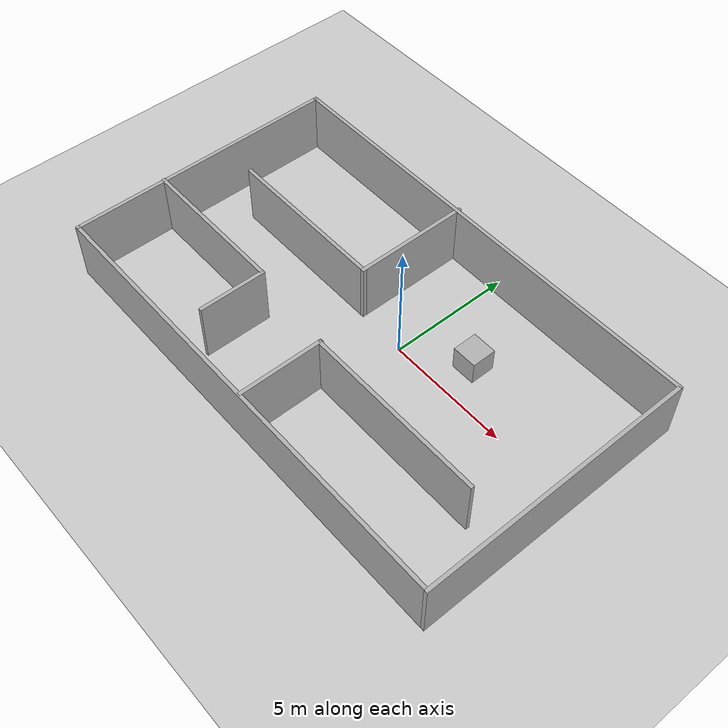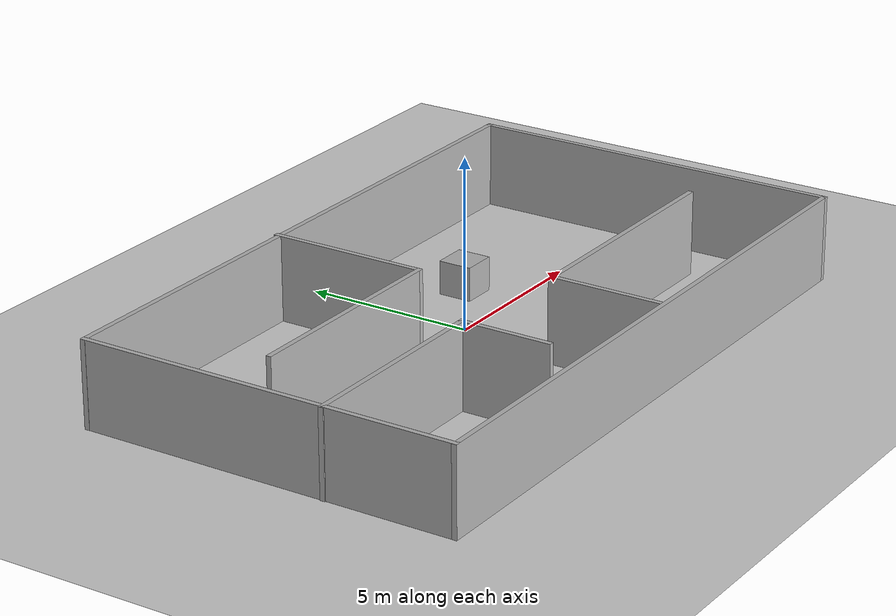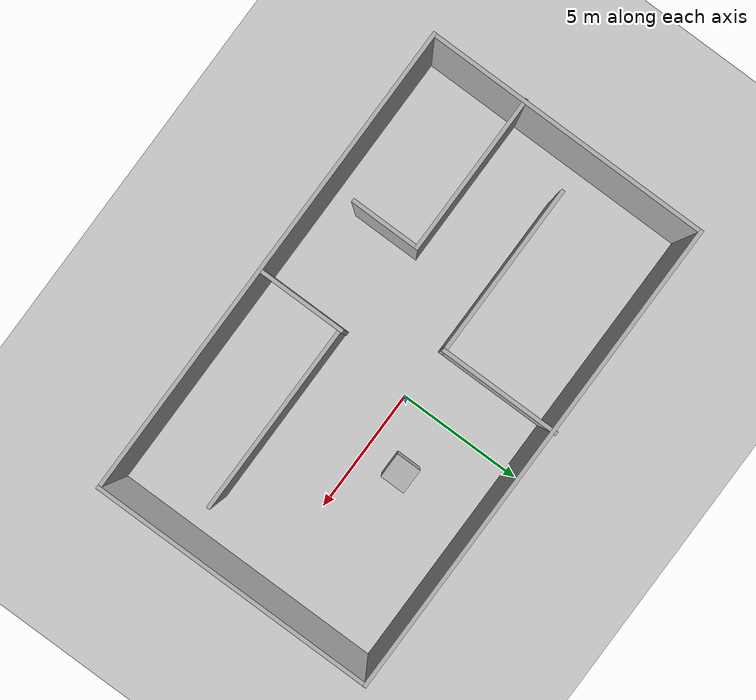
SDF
<?xml version="1.0" ?>
<sdf version='1.10'>
  <world name='default'>

    <plugin filename="gz-sim-physics-system" name="gz::sim::systems::Physics"/>
    <plugin filename="gz-sim-scene-broadcaster-system" name="gz::sim::systems::SceneBroadcaster"/>
    <plugin filename="gz-sim-user-commands-system" name="gz::sim::systems::UserCommands"/>
    <plugin filename="gz-sim-imu-system" name="gz::sim::systems::Imu"/>

    <plugin filename="gz-sim-sensors-system" name="gz::sim::systems::Sensors">
      <render_engine>ogre2</render_engine>
    </plugin>

    <gravity>0 0 -9.8</gravity>
    <physics type='ode'>
      <max_step_size>0.001</max_step_size>
      <real_time_factor>1</real_time_factor>
      <real_time_update_rate>1000</real_time_update_rate>
    </physics>
    <scene>
      <ambient>0.4 0.4 0.4 1</ambient>
      <background>0.7 0.7 0.7 1</background>
      <shadows>true</shadows>
    </scene>

    <light name='maze_sun' type='directional'>
      <pose>0 0 10 0 0 0</pose>
      <cast_shadows>true</cast_shadows>
      <intensity>1</intensity>
      <direction>0 0 -1</direction>
      <diffuse>0.8 0.8 0.8 1</diffuse>
      <specular>0.2 0.2 0.2 1</specular>
    </light>

    <model name='ground_plane'>
      <static>true</static>
      <link name='link'>
        <collision name='collision'>
          <geometry><plane><normal>0 0 1</normal><size>100 100</size></plane></geometry>
        </collision>
        <visual name='visual'>
          <cast_shadows>false</cast_shadows>
          <geometry><plane><normal>0 0 1</normal><size>100 100</size></plane></geometry>
          <material>
            <ambient>0.8 0.8 0.8 1</ambient>
            <diffuse>0.8 0.8 0.8 1</diffuse>
            <specular>0.8 0.8 0.8 1</specular>
          </material>
        </visual>
      </link>
    </model>

    <model name='room'>
      <pose>-0.97 -0.90 0 0 0 0</pose>
      <static>true</static>

      <link name='Wall_66'>
        <pose>0.01 5.51 0 0 0 0</pose>
        <collision name='Wall_66_Collision'><pose>0 0 1.25 0 0 0</pose><geometry><box><size>19 0.15 2.5</size></box></geometry></collision>
        <visual name='Wall_66_Visual'><pose>0 0 1.25 0 0 0</pose><geometry><box><size>19 0.15 2.5</size></box></geometry>
          <material><ambient>0.7 0.7 0.7 1</ambient><diffuse>0.7 0.7 0.7 1</diffuse></material>
        </visual>
      </link>

      <link name='Wall_67'>
        <pose>9.44 -0.04 0 0 0 -1.5708</pose>
        <collision name='Wall_67_Collision'><pose>0 0 1.25 0 0 0</pose><geometry><box><size>11.25 0.15 2.5</size></box></geometry></collision>
        <visual name='Wall_67_Visual'><pose>0 0 1.25 0 0 0</pose><geometry><box><size>11.25 0.15 2.5</size></box></geometry>
          <material><ambient>0.7 0.7 0.7 1</ambient><diffuse>0.7 0.7 0.7 1</diffuse></material>
        </visual>
      </link>

      <link name='Wall_68'>
        <pose>0.01 -5.59 0 0 0 3.1416</pose>
        <collision name='Wall_68_Collision'><pose>0 0 1.25 0 0 0</pose><geometry><box><size>19 0.15 2.5</size></box></geometry></collision>
        <visual name='Wall_68_Visual'><pose>0 0 1.25 0 0 0</pose><geometry><box><size>19 0.15 2.5</size></box></geometry>
          <material><ambient>0.7 0.7 0.7 1</ambient><diffuse>0.7 0.7 0.7 1</diffuse></material>
        </visual>
      </link>

      <link name='Wall_69'>
        <pose>-9.41 -0.04 0 0 0 1.5708</pose>
        <collision name='Wall_69_Collision'><pose>0 0 1.25 0 0 0</pose><geometry><box><size>11.25 0.15 2.5</size></box></geometry></collision>
        <visual name='Wall_69_Visual'><pose>0 0 1.25 0 0 0</pose><geometry><box><size>11.25 0.15 2.5</size></box></geometry>
          <material><ambient>0.7 0.7 0.7 1</ambient><diffuse>0.7 0.7 0.7 1</diffuse></material>
        </visual>
      </link>

      <link name='Wall_71'>
        <pose>-1.12 3.29 0 0 0 -1.5708</pose>
        <collision name='Wall_71_Collision'><pose>0 0 1.25 0 0 0</pose><geometry><box><size>4.75 0.15 2.5</size></box></geometry></collision>
        <visual name='Wall_71_Visual'><pose>0 0 1.25 0 0 0</pose><geometry><box><size>4.75 0.15 2.5</size></box></geometry>
          <material><ambient>0.7 0.7 0.7 1</ambient><diffuse>0.7 0.7 0.7 1</diffuse></material>
        </visual>
      </link>

      <link name='Wall_72'>
        <pose>-4.42 0.99 0 0 0 3.1416</pose>
        <collision name='Wall_72_Collision'><pose>0 0 1.25 0 0 0</pose><geometry><box><size>6.75 0.15 2.5</size></box></geometry></collision>
        <visual name='Wall_72_Visual'><pose>0 0 1.25 0 0 0</pose><geometry><box><size>6.75 0.15 2.5</size></box></geometry>
          <material><ambient>0.7 0.7 0.7 1</ambient><diffuse>0.7 0.7 0.7 1</diffuse></material>
        </visual>
      </link>

      <link name='Wall_79'>
        <pose>0.39 -3.87 0 0 0 1.5708</pose>
        <collision name='Wall_79_Collision'><pose>0 0 1.25 0 0 0</pose><geometry><box><size>3.48 0.15 2.5</size></box></geometry></collision>
        <visual name='Wall_79_Visual'><pose>0 0 1.25 0 0 0</pose><geometry><box><size>3.48 0.15 2.5</size></box></geometry>
          <material><ambient>0.7 0.7 0.7 1</ambient><diffuse>0.7 0.7 0.7 1</diffuse></material>
        </visual>
      </link>

      <link name='Wall_80'>
        <pose>4.07 -2.24 0 0 0 0</pose>
        <collision name='Wall_80_Collision'><pose>0 0 1.25 0 0 0</pose><geometry><box><size>7.5 0.15 2.5</size></box></geometry></collision>
        <visual name='Wall_80_Visual'><pose>0 0 1.25 0 0 0</pose><geometry><box><size>7.5 0.15 2.5</size></box></geometry>
          <material><ambient>0.7 0.7 0.7 1</ambient><diffuse>0.7 0.7 0.7 1</diffuse></material>
        </visual>
      </link>

      <link name='Wall_85'>
        <pose>-6.39 -1.81 0 0 0 0</pose>
        <collision name='Wall_85_Collision'><pose>0 0 1.25 0 0 0</pose><geometry><box><size>6.25 0.15 2.5</size></box></geometry></collision>
        <visual name='Wall_85_Visual'><pose>0 0 1.25 0 0 0</pose><geometry><box><size>6.25 0.15 2.5</size></box></geometry>
          <material><ambient>0.7 0.7 0.7 1</ambient><diffuse>0.7 0.7 0.7 1</diffuse></material>
        </visual>
      </link>

      <link name='Wall_86'>
        <pose>-3.34 -3.11 0 0 0 -1.5708</pose>
        <collision name='Wall_86_Collision'><pose>0 0 1.25 0 0 0</pose><geometry><box><size>2.75 0.15 2.5</size></box></geometry></collision>
        <visual name='Wall_86_Visual'><pose>0 0 1.25 0 0 0</pose><geometry><box><size>2.75 0.15 2.5</size></box></geometry>
          <material><ambient>0.7 0.7 0.7 1</ambient><diffuse>0.7 0.7 0.7 1</diffuse></material>
        </visual>
      </link>
    </model>

    <model name='box'>
      <pose>2.26 1.48 0.5 0 0 0</pose>
      <static>false</static>
      <link name='box_link'>
        <inertial>
          <mass>1</mass>
          <inertia><ixx>0.16666</ixx><ixy>0</ixy><ixz>0</ixz><iyy>0.16666</iyy><iyz>0</iyz><izz>0.16666</izz></inertia>
        </inertial>
        <collision name='box_collision'>
          <geometry><box><size>1 1 1</size></box></geometry>
        </collision>
        <visual name='box_visual'>
          <geometry><box><size>1 1 1</size></box></geometry>
          <material>
            <ambient>0.3 0.3 0.3 1</ambient>
            <diffuse>0.7 0.7 0.7 1</diffuse>
          </material>
        </visual>
      </link>
    </model>

  </world>
</sdf>
